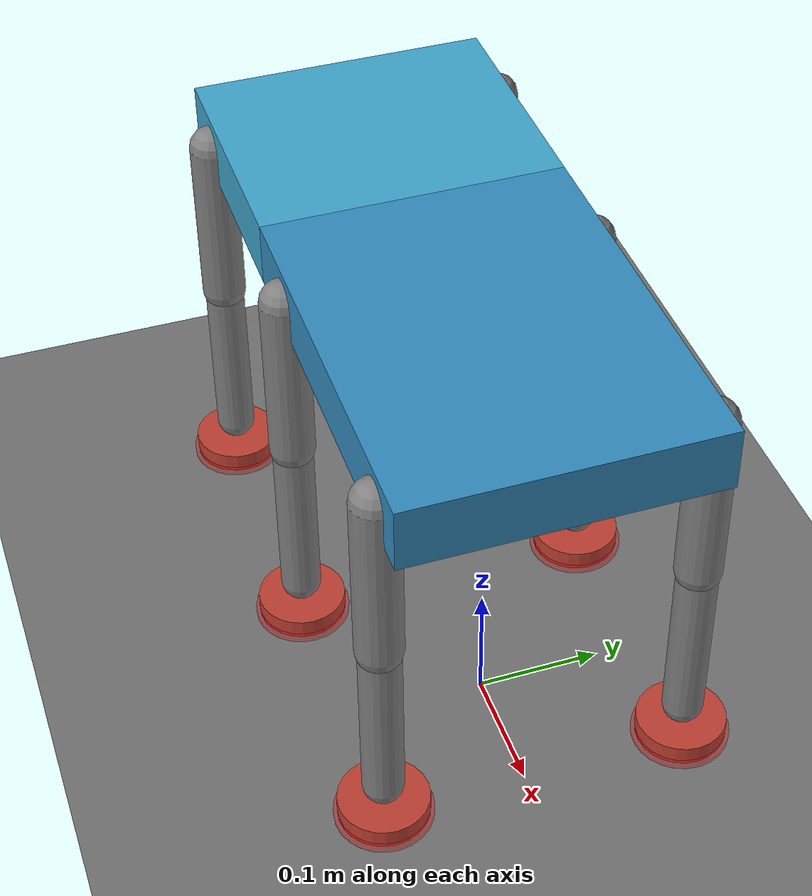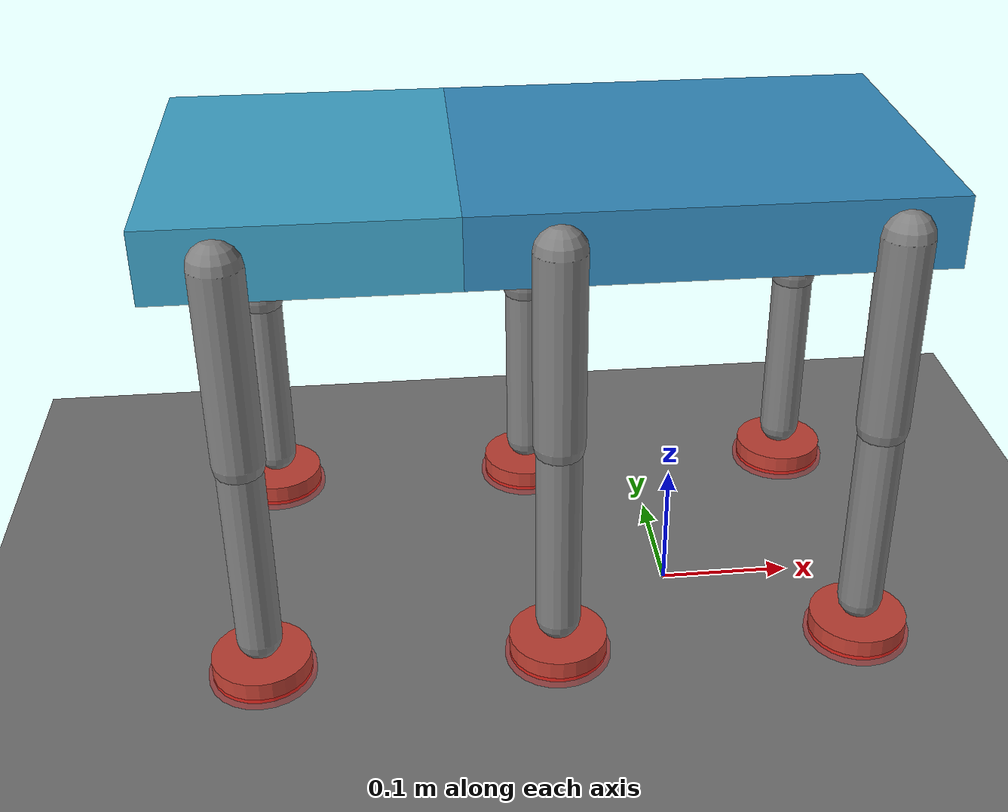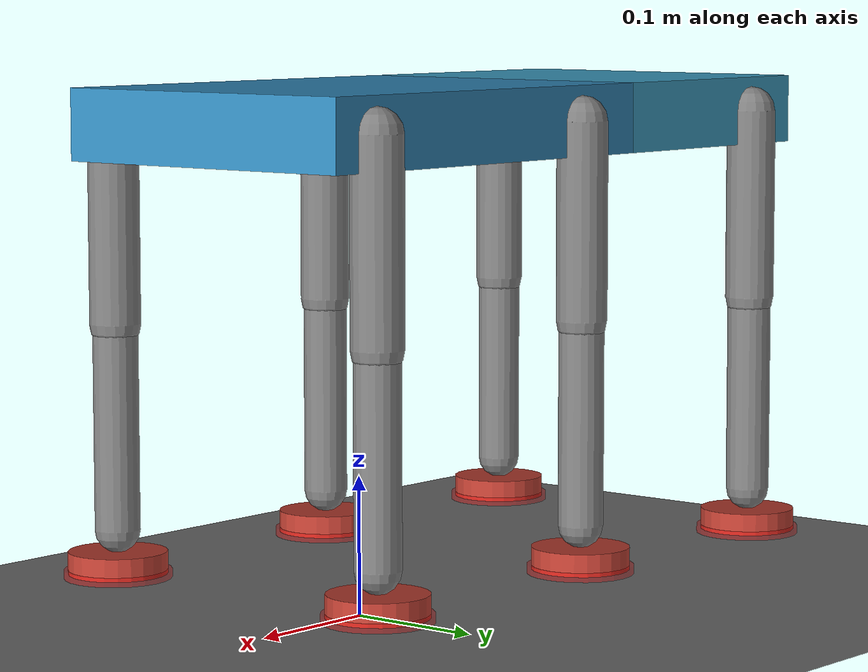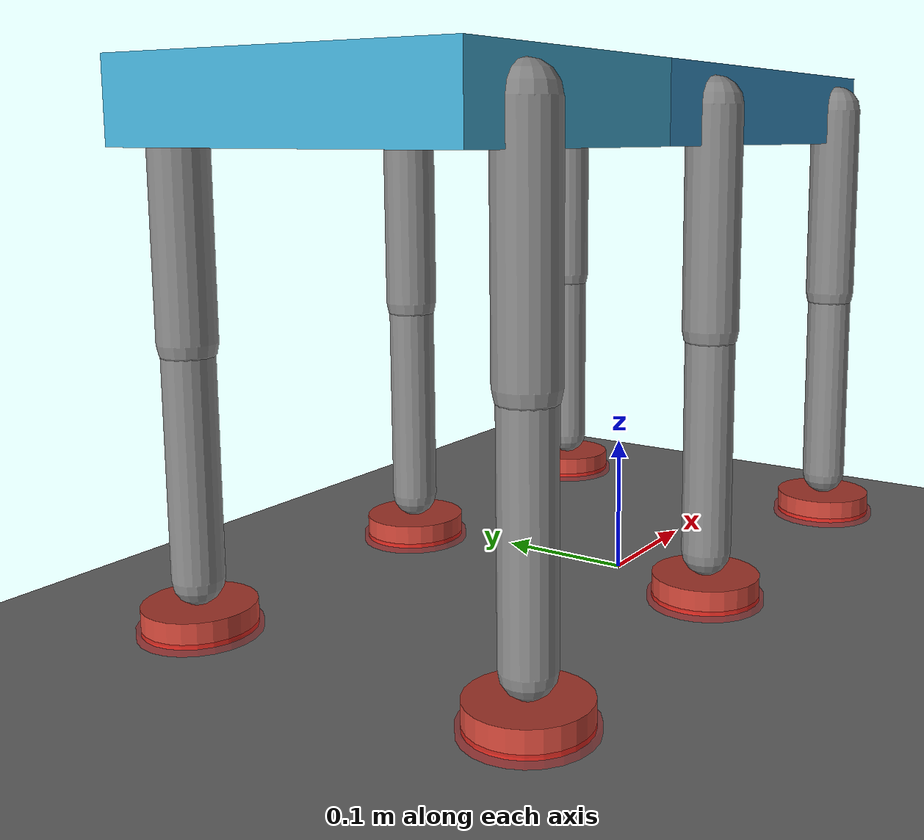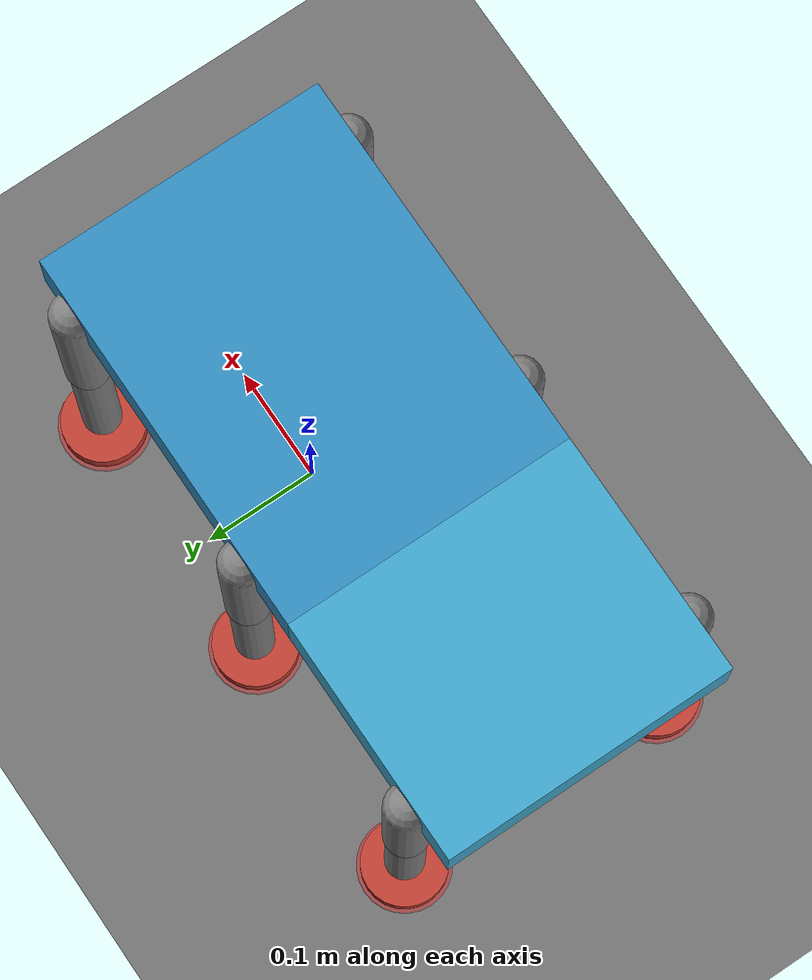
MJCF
<mujoco model="underwater_hexapod">
  <compiler angle="radian"/>
  <option timestep="0.002" gravity="0 0 -9.81" integrator="implicitfast"/>
  <statistic center="-0.08 0 0.18" extent="0.65"/>

  <visual>
    <headlight diffuse="0.7 0.7 0.7" ambient="0.3 0.3 0.3" specular="0 0 0"/>
  </visual>

  <default>
    <joint type="hinge" limited="true" damping="0.8" armature="0.02"/>
    <geom friction="0.9 0.02 0.001" condim="4"/>
    <velocity ctrllimited="true" ctrlrange="-1 1" kv="8"/>
  </default>

  <worldbody>
    <light pos="0 0 2" dir="0 0 -1" directional="true"/>
    <geom name="ground" type="plane" size="2 2 0.01" rgba="0.45 0.45 0.45 1"/>

    <!-- The front plate is the floating base and carries two pairs of legs. -->
    <body name="base_link" pos="0 0 0.35">
      <freejoint name="base_free"/>
      <geom name="front_plate" type="box" size="0.16 0.12 0.025" mass="1" rgba="0.20 0.55 0.75 1"/>

      <body name="lf_upper" pos="0.12 0.12 0">
        <joint name="lf_j1" axis="0 1 0" range="-1.57 1.57"/>
        <geom name="lf_upper_geom" type="capsule" fromto="0 0 0 0 0 -0.14" size="0.018" mass="1"/>
        <body name="lf_lower" pos="0 0 -0.14">
          <joint name="lf_j2" axis="0 1 0" range="-1.57 1.57"/>
          <geom name="lf_lower_geom" type="capsule" fromto="0 0 0 0 0 -0.145" size="0.016" mass="1"/>
          <body name="lf_foot" pos="0 0 -0.16">
            <geom name="lf_foot_pad" type="cylinder" size="0.035 0.008" pos="0 0 -0.008" mass="1" rgba="0.75 0.25 0.20 1"/>
            <site name="lf_foot_site" type="cylinder" size="0.038 0.003" pos="0 0 -0.016" rgba="1 0 0 0.35"/>
          </body>
        </body>
      </body>

      <body name="rf_upper" pos="0.12 -0.12 0">
        <joint name="rf_j1" axis="0 1 0" range="-1.57 1.57"/>
        <geom name="rf_upper_geom" type="capsule" fromto="0 0 0 0 0 -0.14" size="0.018" mass="1"/>
        <body name="rf_lower" pos="0 0 -0.14">
          <joint name="rf_j2" axis="0 1 0" range="-1.57 1.57"/>
          <geom name="rf_lower_geom" type="capsule" fromto="0 0 0 0 0 -0.145" size="0.016" mass="1"/>
          <body name="rf_foot" pos="0 0 -0.16">
            <geom name="rf_foot_pad" type="cylinder" size="0.035 0.008" pos="0 0 -0.008" mass="1" rgba="0.75 0.25 0.20 1"/>
            <site name="rf_foot_site" type="cylinder" size="0.038 0.003" pos="0 0 -0.016" rgba="1 0 0 0.35"/>
          </body>
        </body>
      </body>

      <!-- The middle pair is also mounted on the front plate. -->
      <body name="lm_upper" pos="-0.10 0.12 0">
        <joint name="lm_j1" axis="0 1 0" range="-1.57 1.57"/>
        <geom name="lm_upper_geom" type="capsule" fromto="0 0 0 0 0 -0.14" size="0.018" mass="1"/>
        <body name="lm_lower" pos="0 0 -0.14">
          <joint name="lm_j2" axis="0 1 0" range="-1.57 1.57"/>
          <geom name="lm_lower_geom" type="capsule" fromto="0 0 0 0 0 -0.145" size="0.016" mass="1"/>
          <body name="lm_foot" pos="0 0 -0.16">
            <geom name="lm_foot_pad" type="cylinder" size="0.035 0.008" pos="0 0 -0.008" mass="1" rgba="0.75 0.25 0.20 1"/>
            <site name="lm_foot_site" type="cylinder" size="0.038 0.003" pos="0 0 -0.016" rgba="1 0 0 0.35"/>
          </body>
        </body>
      </body>

      <body name="rm_upper" pos="-0.10 -0.12 0">
        <joint name="rm_j1" axis="0 1 0" range="-1.57 1.57"/>
        <geom name="rm_upper_geom" type="capsule" fromto="0 0 0 0 0 -0.14" size="0.018" mass="1"/>
        <body name="rm_lower" pos="0 0 -0.14">
          <joint name="rm_j2" axis="0 1 0" range="-1.57 1.57"/>
          <geom name="rm_lower_geom" type="capsule" fromto="0 0 0 0 0 -0.145" size="0.016" mass="1"/>
          <body name="rm_foot" pos="0 0 -0.16">
            <geom name="rm_foot_pad" type="cylinder" size="0.035 0.008" pos="0 0 -0.008" mass="1" rgba="0.75 0.25 0.20 1"/>
            <site name="rm_foot_site" type="cylinder" size="0.038 0.003" pos="0 0 -0.016" rgba="1 0 0 0.35"/>
          </body>
        </body>
      </body>

      <!-- Positive rotation lifts the rear plate toward +Z, opposite the legs. -->
      <body name="rear_plate_link" pos="-0.16 0 0">
        <joint name="base_fold" axis="0 1 0" range="0 1.5708"/>
        <geom name="rear_plate" type="box" size="0.10 0.12 0.025" pos="-0.10 0 0" mass="1" rgba="0.25 0.65 0.80 1"/>

        <body name="lr_upper" pos="-0.15 0.12 0">
          <joint name="lr_j1" axis="0 1 0" range="-1.57 1.57"/>
          <geom name="lr_upper_geom" type="capsule" fromto="0 0 0 0 0 -0.14" size="0.018" mass="1"/>
          <body name="lr_lower" pos="0 0 -0.14">
            <joint name="lr_j2" axis="0 1 0" range="-1.57 1.57"/>
            <geom name="lr_lower_geom" type="capsule" fromto="0 0 0 0 0 -0.145" size="0.016" mass="1"/>
            <body name="lr_foot" pos="0 0 -0.16">
              <geom name="lr_foot_pad" type="cylinder" size="0.035 0.008" pos="0 0 -0.008" mass="1" rgba="0.75 0.25 0.20 1"/>
              <site name="lr_foot_site" type="cylinder" size="0.038 0.003" pos="0 0 -0.016" rgba="1 0 0 0.35"/>
            </body>
          </body>
        </body>

        <body name="rr_upper" pos="-0.15 -0.12 0">
          <joint name="rr_j1" axis="0 1 0" range="-1.57 1.57"/>
          <geom name="rr_upper_geom" type="capsule" fromto="0 0 0 0 0 -0.14" size="0.018" mass="1"/>
          <body name="rr_lower" pos="0 0 -0.14">
            <joint name="rr_j2" axis="0 1 0" range="-1.57 1.57"/>
            <geom name="rr_lower_geom" type="capsule" fromto="0 0 0 0 0 -0.145" size="0.016" mass="1"/>
            <body name="rr_foot" pos="0 0 -0.16">
              <geom name="rr_foot_pad" type="cylinder" size="0.035 0.008" pos="0 0 -0.008" mass="1" rgba="0.75 0.25 0.20 1"/>
              <site name="rr_foot_site" type="cylinder" size="0.038 0.003" pos="0 0 -0.016" rgba="1 0 0 0.35"/>
            </body>
          </body>
        </body>
      </body>
    </body>
  </worldbody>

  <!-- Joint commands are target velocities in rad/s, limited to [-1, 1]. -->
  <actuator>
    <velocity name="base_fold" joint="base_fold"/>
    <velocity name="lf_j1" joint="lf_j1"/>
    <velocity name="lf_j2" joint="lf_j2"/>
    <velocity name="lm_j1" joint="lm_j1"/>
    <velocity name="lm_j2" joint="lm_j2"/>
    <velocity name="rf_j1" joint="rf_j1"/>
    <velocity name="rf_j2" joint="rf_j2"/>
    <velocity name="rm_j1" joint="rm_j1"/>
    <velocity name="rm_j2" joint="rm_j2"/>
    <velocity name="lr_j1" joint="lr_j1"/>
    <velocity name="lr_j2" joint="lr_j2"/>
    <velocity name="rr_j1" joint="rr_j1"/>
    <velocity name="rr_j2" joint="rr_j2"/>

    <!-- 0 = released, 1 = electromagnetic adhesion enabled. -->
    <adhesion name="lf_adhesion" body="lf_foot" gain="20" ctrlrange="0 1"/>
    <adhesion name="lm_adhesion" body="lm_foot" gain="20" ctrlrange="0 1"/>
    <adhesion name="lr_adhesion" body="lr_foot" gain="20" ctrlrange="0 1"/>
    <adhesion name="rf_adhesion" body="rf_foot" gain="20" ctrlrange="0 1"/>
    <adhesion name="rm_adhesion" body="rm_foot" gain="20" ctrlrange="0 1"/>
    <adhesion name="rr_adhesion" body="rr_foot" gain="20" ctrlrange="0 1"/>
  </actuator>

  <sensor>
    <touch name="lf_contact" site="lf_foot_site"/>
    <touch name="lm_contact" site="lm_foot_site"/>
    <touch name="lr_contact" site="lr_foot_site"/>
    <touch name="rf_contact" site="rf_foot_site"/>
    <touch name="rm_contact" site="rm_foot_site"/>
    <touch name="rr_contact" site="rr_foot_site"/>
  </sensor>
</mujoco>
